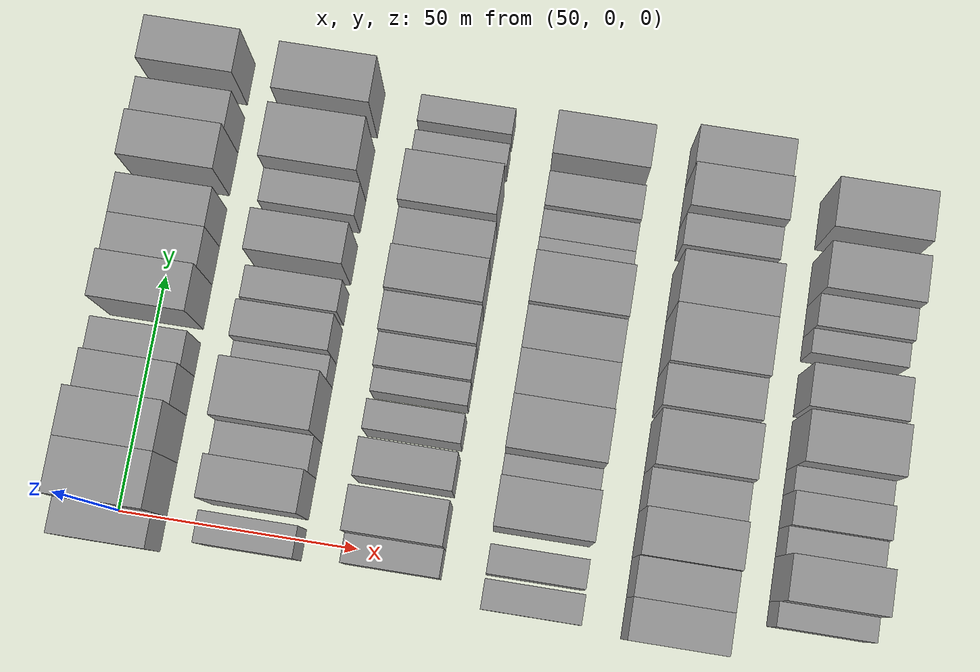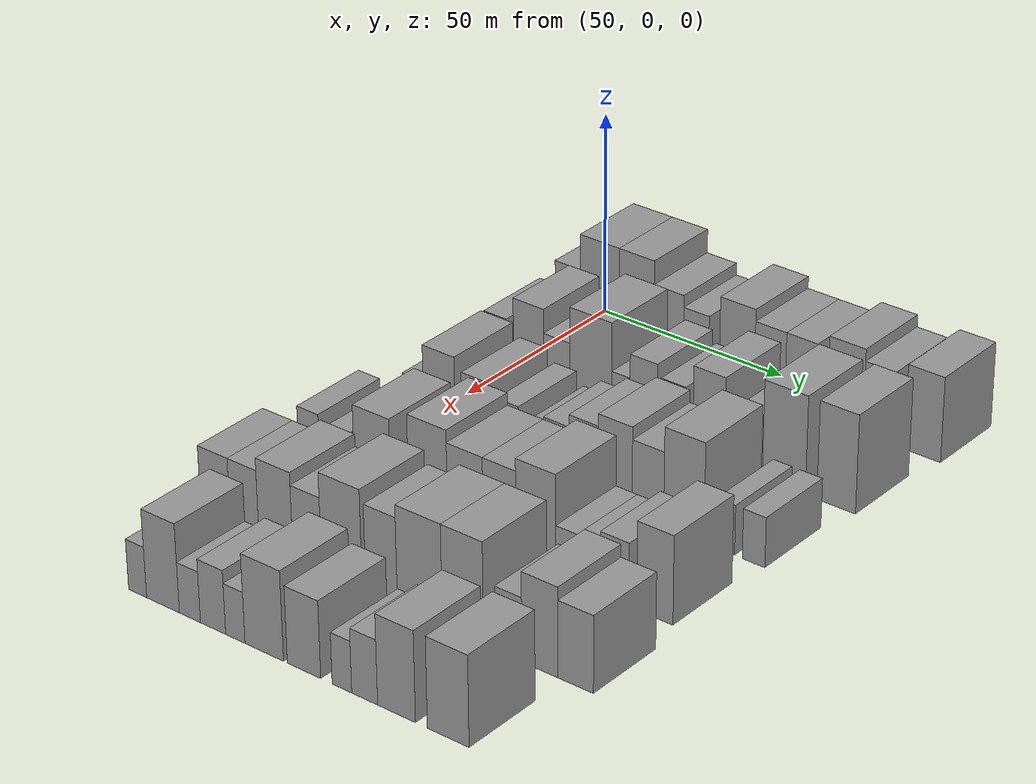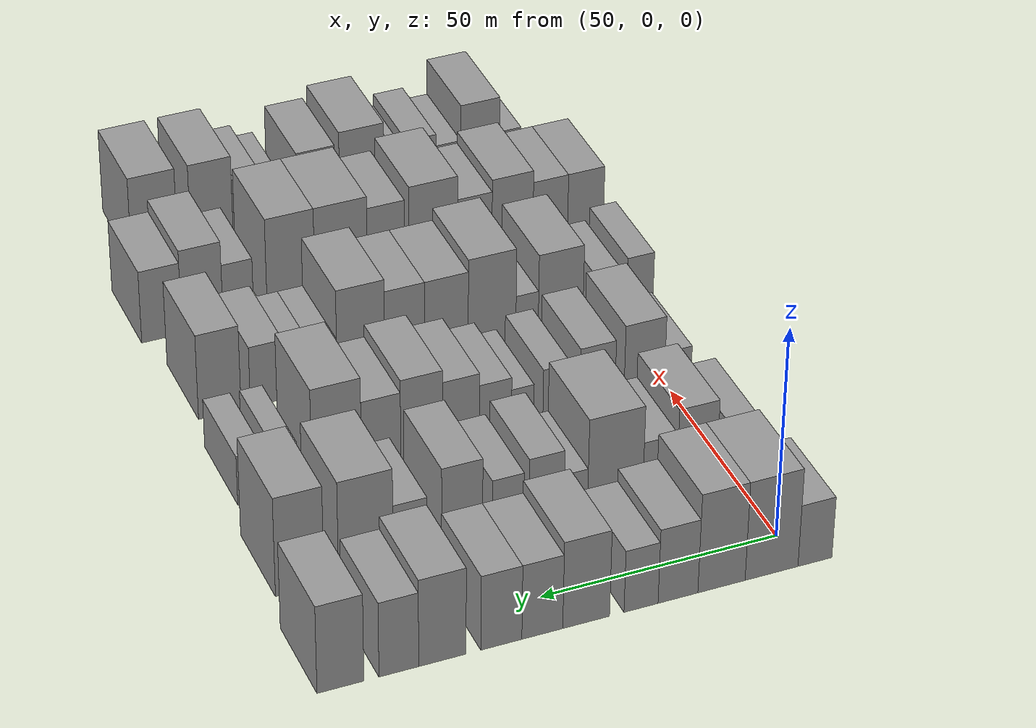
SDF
<sdf version="1.6">
 <world name="default">
  <model name="building_60">
   <static>1</static>
   <pose>50.0000 -3.3186 0 0.000000 0.000000 0.000000</pose>
   <link name="link">
    <pose>0 0 7.50 0 0 0</pose>
    <collision name="collision"><geometry><box><size>20.0000 7.2764 15.0000</size></box></geometry></collision>
    <visual name="visual">
     <cast_shadows>0</cast_shadows>
     <geometry><box><size>20.0000 7.2764 15.0000</size></box></geometry>
     <material>
      <script>
       <uri>model://grey_wall/materials/scripts</uri>
       <uri>model://grey_wall/materials/textures</uri>
       <name>vrc/grey_wall</name>
      </script>
     </material>
    </visual>
   </link>
  </model>
  <model name="building_61">
   <static>1</static>
   <pose>50.0000 5.9535 0 0.000000 0.000000 0.000000</pose>
   <link name="link">
    <pose>0 0 12.00 0 0 0</pose>
    <collision name="collision"><geometry><box><size>20.0000 11.2679 24.0000</size></box></geometry></collision>
    <visual name="visual">
     <cast_shadows>0</cast_shadows>
     <geometry><box><size>20.0000 11.2679 24.0000</size></box></geometry>
     <material>
      <script>
       <uri>model://grey_wall/materials/scripts</uri>
       <uri>model://grey_wall/materials/textures</uri>
       <name>vrc/grey_wall</name>
      </script>
     </material>
    </visual>
   </link>
  </model>
  <model name="building_62">
   <static>1</static>
   <pose>50.0000 16.5843 0 0.000000 0.000000 0.000000</pose>
   <link name="link">
    <pose>0 0 12.00 0 0 0</pose>
    <collision name="collision"><geometry><box><size>20.0000 9.9937 24.0000</size></box></geometry></collision>
    <visual name="visual">
     <cast_shadows>0</cast_shadows>
     <geometry><box><size>20.0000 9.9937 24.0000</size></box></geometry>
     <material>
      <script>
       <uri>model://grey_wall/materials/scripts</uri>
       <uri>model://grey_wall/materials/textures</uri>
       <name>vrc/grey_wall</name>
      </script>
     </material>
    </visual>
   </link>
  </model>
  <model name="building_63">
   <static>1</static>
   <pose>50.0000 25.7559 0 0.000000 0.000000 0.000000</pose>
   <link name="link">
    <pose>0 0 9.00 0 0 0</pose>
    <collision name="collision"><geometry><box><size>20.0000 8.3497 18.0000</size></box></geometry></collision>
    <visual name="visual">
     <cast_shadows>0</cast_shadows>
     <geometry><box><size>20.0000 8.3497 18.0000</size></box></geometry>
     <material>
      <script>
       <uri>model://grey_wall/materials/scripts</uri>
       <uri>model://grey_wall/materials/textures</uri>
       <name>vrc/grey_wall</name>
      </script>
     </material>
    </visual>
   </link>
  </model>
  <model name="building_64">
   <static>1</static>
   <pose>50.0000 33.4857 0 0.000000 0.000000 0.000000</pose>
   <link name="link">
    <pose>0 0 7.50 0 0 0</pose>
    <collision name="collision"><geometry><box><size>20.0000 7.1099 15.0000</size></box></geometry></collision>
    <visual name="visual">
     <cast_shadows>0</cast_shadows>
     <geometry><box><size>20.0000 7.1099 15.0000</size></box></geometry>
     <material>
      <script>
       <uri>model://grey_wall/materials/scripts</uri>
       <uri>model://grey_wall/materials/textures</uri>
       <name>vrc/grey_wall</name>
      </script>
     </material>
    </visual>
   </link>
  </model>
  <model name="building_65">
   <static>1</static>
   <pose>50.0000 44.8790 0 0.000000 0.000000 0.000000</pose>
   <link name="link">
    <pose>0 0 10.50 0 0 0</pose>
    <collision name="collision"><geometry><box><size>20.0000 9.6767 21.0000</size></box></geometry></collision>
    <visual name="visual">
     <cast_shadows>0</cast_shadows>
     <geometry><box><size>20.0000 9.6767 21.0000</size></box></geometry>
     <material>
      <script>
       <uri>model://grey_wall/materials/scripts</uri>
       <uri>model://grey_wall/materials/textures</uri>
       <name>vrc/grey_wall</name>
      </script>
     </material>
    </visual>
   </link>
  </model>
  <model name="building_66">
   <static>1</static>
   <pose>50.0000 53.9146 0 0.000000 0.000000 0.000000</pose>
   <link name="link">
    <pose>0 0 9.00 0 0 0</pose>
    <collision name="collision"><geometry><box><size>20.0000 8.3945 18.0000</size></box></geometry></collision>
    <visual name="visual">
     <cast_shadows>0</cast_shadows>
     <geometry><box><size>20.0000 8.3945 18.0000</size></box></geometry>
     <material>
      <script>
       <uri>model://grey_wall/materials/scripts</uri>
       <uri>model://grey_wall/materials/textures</uri>
       <name>vrc/grey_wall</name>
      </script>
     </material>
    </visual>
   </link>
  </model>
  <model name="building_67">
   <static>1</static>
   <pose>50.0000 62.2940 0 0.000000 0.000000 0.000000</pose>
   <link name="link">
    <pose>0 0 9.00 0 0 0</pose>
    <collision name="collision"><geometry><box><size>20.0000 8.3644 18.0000</size></box></geometry></collision>
    <visual name="visual">
     <cast_shadows>0</cast_shadows>
     <geometry><box><size>20.0000 8.3644 18.0000</size></box></geometry>
     <material>
      <script>
       <uri>model://grey_wall/materials/scripts</uri>
       <uri>model://grey_wall/materials/textures</uri>
       <name>vrc/grey_wall</name>
      </script>
     </material>
    </visual>
   </link>
  </model>
  <model name="building_68">
   <static>1</static>
   <pose>50.0000 74.2563 0 0.000000 0.000000 0.000000</pose>
   <link name="link">
    <pose>0 0 10.50 0 0 0</pose>
    <collision name="collision"><geometry><box><size>20.0000 9.5601 21.0000</size></box></geometry></collision>
    <visual name="visual">
     <cast_shadows>0</cast_shadows>
     <geometry><box><size>20.0000 9.5601 21.0000</size></box></geometry>
     <material>
      <script>
       <uri>model://grey_wall/materials/scripts</uri>
       <uri>model://grey_wall/materials/textures</uri>
       <name>vrc/grey_wall</name>
      </script>
     </material>
    </visual>
   </link>
  </model>
  <model name="building_69">
   <static>1</static>
   <pose>50.0000 83.0197 0 0.000000 0.000000 0.000000</pose>
   <link name="link">
    <pose>0 0 9.00 0 0 0</pose>
    <collision name="collision"><geometry><box><size>20.0000 7.9668 18.0000</size></box></geometry></collision>
    <visual name="visual">
     <cast_shadows>0</cast_shadows>
     <geometry><box><size>20.0000 7.9668 18.0000</size></box></geometry>
     <material>
      <script>
       <uri>model://grey_wall/materials/scripts</uri>
       <uri>model://grey_wall/materials/textures</uri>
       <name>vrc/grey_wall</name>
      </script>
     </material>
    </visual>
   </link>
  </model>
  <model name="building_70">
   <static>1</static>
   <pose>50.0000 94.6679 0 0.000000 0.000000 0.000000</pose>
   <link name="link">
    <pose>0 0 10.50 0 0 0</pose>
    <collision name="collision"><geometry><box><size>20.0000 9.3296 21.0000</size></box></geometry></collision>
    <visual name="visual">
     <cast_shadows>0</cast_shadows>
     <geometry><box><size>20.0000 9.3296 21.0000</size></box></geometry>
     <material>
      <script>
       <uri>model://grey_wall/materials/scripts</uri>
       <uri>model://grey_wall/materials/textures</uri>
       <name>vrc/grey_wall</name>
      </script>
     </material>
    </visual>
   </link>
  </model>
  <model name="building_167">
   <static>1</static>
   <pose>79.0000 -0.9709 0 0.000000 0.000000 0.000000</pose>
   <link name="link">
    <pose>0 0 7.50 0 0 0</pose>
    <collision name="collision"><geometry><box><size>20.0000 6.4832 15.0000</size></box></geometry></collision>
    <visual name="visual">
     <cast_shadows>0</cast_shadows>
     <geometry><box><size>20.0000 6.4832 15.0000</size></box></geometry>
     <material>
      <script>
       <uri>model://grey_wall/materials/scripts</uri>
       <uri>model://grey_wall/materials/textures</uri>
       <name>vrc/grey_wall</name>
      </script>
     </material>
    </visual>
   </link>
  </model>
  <model name="building_168">
   <static>1</static>
   <pose>79.0000 8.6030 0 0.000000 0.000000 0.000000</pose>
   <link name="link">
    <pose>0 0 10.50 0 0 0</pose>
    <collision name="collision"><geometry><box><size>20.0000 8.6647 21.0000</size></box></geometry></collision>
    <visual name="visual">
     <cast_shadows>0</cast_shadows>
     <geometry><box><size>20.0000 8.6647 21.0000</size></box></geometry>
     <material>
      <script>
       <uri>model://grey_wall/materials/scripts</uri>
       <uri>model://grey_wall/materials/textures</uri>
       <name>vrc/grey_wall</name>
      </script>
     </material>
    </visual>
   </link>
  </model>
  <model name="building_169">
   <static>1</static>
   <pose>79.0000 16.6004 0 0.000000 0.000000 0.000000</pose>
   <link name="link">
    <pose>0 0 7.50 0 0 0</pose>
    <collision name="collision"><geometry><box><size>20.0000 7.3301 15.0000</size></box></geometry></collision>
    <visual name="visual">
     <cast_shadows>0</cast_shadows>
     <geometry><box><size>20.0000 7.3301 15.0000</size></box></geometry>
     <material>
      <script>
       <uri>model://grey_wall/materials/scripts</uri>
       <uri>model://grey_wall/materials/textures</uri>
       <name>vrc/grey_wall</name>
      </script>
     </material>
    </visual>
   </link>
  </model>
  <model name="building_170">
   <static>1</static>
   <pose>79.0000 26.1808 0 0.000000 0.000000 0.000000</pose>
   <link name="link">
    <pose>0 0 12.00 0 0 0</pose>
    <collision name="collision"><geometry><box><size>20.0000 11.8307 24.0000</size></box></geometry></collision>
    <visual name="visual">
     <cast_shadows>0</cast_shadows>
     <geometry><box><size>20.0000 11.8307 24.0000</size></box></geometry>
     <material>
      <script>
       <uri>model://grey_wall/materials/scripts</uri>
       <uri>model://grey_wall/materials/textures</uri>
       <name>vrc/grey_wall</name>
      </script>
     </material>
    </visual>
   </link>
  </model>
  <model name="building_171">
   <static>1</static>
   <pose>79.0000 34.6026 0 0.000000 0.000000 0.000000</pose>
   <link name="link">
    <pose>0 0 6.00 0 0 0</pose>
    <collision name="collision"><geometry><box><size>20.0000 5.0128 12.0000</size></box></geometry></collision>
    <visual name="visual">
     <cast_shadows>0</cast_shadows>
     <geometry><box><size>20.0000 5.0128 12.0000</size></box></geometry>
     <material>
      <script>
       <uri>model://grey_wall/materials/scripts</uri>
       <uri>model://grey_wall/materials/textures</uri>
       <name>vrc/grey_wall</name>
      </script>
     </material>
    </visual>
   </link>
  </model>
  <model name="building_172">
   <static>1</static>
   <pose>79.0000 40.8529 0 0.000000 0.000000 0.000000</pose>
   <link name="link">
    <pose>0 0 9.00 0 0 0</pose>
    <collision name="collision"><geometry><box><size>20.0000 7.4879 18.0000</size></box></geometry></collision>
    <visual name="visual">
     <cast_shadows>0</cast_shadows>
     <geometry><box><size>20.0000 7.4879 18.0000</size></box></geometry>
     <material>
      <script>
       <uri>model://grey_wall/materials/scripts</uri>
       <uri>model://grey_wall/materials/textures</uri>
       <name>vrc/grey_wall</name>
      </script>
     </material>
    </visual>
   </link>
  </model>
  <model name="building_173">
   <static>1</static>
   <pose>79.0000 48.9459 0 0.000000 0.000000 0.000000</pose>
   <link name="link">
    <pose>0 0 7.50 0 0 0</pose>
    <collision name="collision"><geometry><box><size>20.0000 6.6981 15.0000</size></box></geometry></collision>
    <visual name="visual">
     <cast_shadows>0</cast_shadows>
     <geometry><box><size>20.0000 6.6981 15.0000</size></box></geometry>
     <material>
      <script>
       <uri>model://grey_wall/materials/scripts</uri>
       <uri>model://grey_wall/materials/textures</uri>
       <name>vrc/grey_wall</name>
      </script>
     </material>
    </visual>
   </link>
  </model>
  <model name="building_174">
   <static>1</static>
   <pose>79.0000 58.5624 0 0.000000 0.000000 0.000000</pose>
   <link name="link">
    <pose>0 0 10.50 0 0 0</pose>
    <collision name="collision"><geometry><box><size>20.0000 8.5348 21.0000</size></box></geometry></collision>
    <visual name="visual">
     <cast_shadows>0</cast_shadows>
     <geometry><box><size>20.0000 8.5348 21.0000</size></box></geometry>
     <material>
      <script>
       <uri>model://grey_wall/materials/scripts</uri>
       <uri>model://grey_wall/materials/textures</uri>
       <name>vrc/grey_wall</name>
      </script>
     </material>
    </visual>
   </link>
  </model>
  <model name="building_175">
   <static>1</static>
   <pose>79.0000 69.3627 0 0.000000 0.000000 0.000000</pose>
   <link name="link">
    <pose>0 0 7.50 0 0 0</pose>
    <collision name="collision"><geometry><box><size>20.0000 7.0658 15.0000</size></box></geometry></collision>
    <visual name="visual">
     <cast_shadows>0</cast_shadows>
     <geometry><box><size>20.0000 7.0658 15.0000</size></box></geometry>
     <material>
      <script>
       <uri>model://grey_wall/materials/scripts</uri>
       <uri>model://grey_wall/materials/textures</uri>
       <name>vrc/grey_wall</name>
      </script>
     </material>
    </visual>
   </link>
  </model>
  <model name="building_176">
   <static>1</static>
   <pose>79.0000 78.5263 0 0.000000 0.000000 0.000000</pose>
   <link name="link">
    <pose>0 0 12.00 0 0 0</pose>
    <collision name="collision"><geometry><box><size>20.0000 11.2614 24.0000</size></box></geometry></collision>
    <visual name="visual">
     <cast_shadows>0</cast_shadows>
     <geometry><box><size>20.0000 11.2614 24.0000</size></box></geometry>
     <material>
      <script>
       <uri>model://grey_wall/materials/scripts</uri>
       <uri>model://grey_wall/materials/textures</uri>
       <name>vrc/grey_wall</name>
      </script>
     </material>
    </visual>
   </link>
  </model>
  <model name="building_177">
   <static>1</static>
   <pose>79.0000 92.1079 0 0.000000 0.000000 0.000000</pose>
   <link name="link">
    <pose>0 0 12.00 0 0 0</pose>
    <collision name="collision"><geometry><box><size>20.0000 9.9020 24.0000</size></box></geometry></collision>
    <visual name="visual">
     <cast_shadows>0</cast_shadows>
     <geometry><box><size>20.0000 9.9020 24.0000</size></box></geometry>
     <material>
      <script>
       <uri>model://grey_wall/materials/scripts</uri>
       <uri>model://grey_wall/materials/textures</uri>
       <name>vrc/grey_wall</name>
      </script>
     </material>
    </visual>
   </link>
  </model>
  <model name="building_285">
   <static>1</static>
   <pose>108.0000 -0.4358 0 0.000000 0.000000 0.000000</pose>
   <link name="link">
    <pose>0 0 6.00 0 0 0</pose>
    <collision name="collision"><geometry><box><size>20.0000 5.9710 12.0000</size></box></geometry></collision>
    <visual name="visual">
     <cast_shadows>0</cast_shadows>
     <geometry><box><size>20.0000 5.9710 12.0000</size></box></geometry>
     <material>
      <script>
       <uri>model://grey_wall/materials/scripts</uri>
       <uri>model://grey_wall/materials/textures</uri>
       <name>vrc/grey_wall</name>
      </script>
     </material>
    </visual>
   </link>
  </model>
  <model name="building_286">
   <static>1</static>
   <pose>108.0000 7.0276 0 0.000000 0.000000 0.000000</pose>
   <link name="link">
    <pose>0 0 10.50 0 0 0</pose>
    <collision name="collision"><geometry><box><size>20.0000 8.9559 21.0000</size></box></geometry></collision>
    <visual name="visual">
     <cast_shadows>0</cast_shadows>
     <geometry><box><size>20.0000 8.9559 21.0000</size></box></geometry>
     <material>
      <script>
       <uri>model://grey_wall/materials/scripts</uri>
       <uri>model://grey_wall/materials/textures</uri>
       <name>vrc/grey_wall</name>
      </script>
     </material>
    </visual>
   </link>
  </model>
  <model name="building_287">
   <static>1</static>
   <pose>108.0000 17.3873 0 0.000000 0.000000 0.000000</pose>
   <link name="link">
    <pose>0 0 9.00 0 0 0</pose>
    <collision name="collision"><geometry><box><size>20.0000 7.7633 18.0000</size></box></geometry></collision>
    <visual name="visual">
     <cast_shadows>0</cast_shadows>
     <geometry><box><size>20.0000 7.7633 18.0000</size></box></geometry>
     <material>
      <script>
       <uri>model://grey_wall/materials/scripts</uri>
       <uri>model://grey_wall/materials/textures</uri>
       <name>vrc/grey_wall</name>
      </script>
     </material>
    </visual>
   </link>
  </model>
  <model name="building_288">
   <static>1</static>
   <pose>108.0000 26.2926 0 0.000000 0.000000 0.000000</pose>
   <link name="link">
    <pose>0 0 7.50 0 0 0</pose>
    <collision name="collision"><geometry><box><size>20.0000 6.0474 15.0000</size></box></geometry></collision>
    <visual name="visual">
     <cast_shadows>0</cast_shadows>
     <geometry><box><size>20.0000 6.0474 15.0000</size></box></geometry>
     <material>
      <script>
       <uri>model://grey_wall/materials/scripts</uri>
       <uri>model://grey_wall/materials/textures</uri>
       <name>vrc/grey_wall</name>
      </script>
     </material>
    </visual>
   </link>
  </model>
  <model name="building_289">
   <static>1</static>
   <pose>108.0000 33.7464 0 0.000000 0.000000 0.000000</pose>
   <link name="link">
    <pose>0 0 6.00 0 0 0</pose>
    <collision name="collision"><geometry><box><size>20.0000 4.8602 12.0000</size></box></geometry></collision>
    <visual name="visual">
     <cast_shadows>0</cast_shadows>
     <geometry><box><size>20.0000 4.8602 12.0000</size></box></geometry>
     <material>
      <script>
       <uri>model://grey_wall/materials/scripts</uri>
       <uri>model://grey_wall/materials/textures</uri>
       <name>vrc/grey_wall</name>
      </script>
     </material>
    </visual>
   </link>
  </model>
  <model name="building_290">
   <static>1</static>
   <pose>108.0000 39.6353 0 0.000000 0.000000 0.000000</pose>
   <link name="link">
    <pose>0 0 7.50 0 0 0</pose>
    <collision name="collision"><geometry><box><size>20.0000 6.9175 15.0000</size></box></geometry></collision>
    <visual name="visual">
     <cast_shadows>0</cast_shadows>
     <geometry><box><size>20.0000 6.9175 15.0000</size></box></geometry>
     <material>
      <script>
       <uri>model://grey_wall/materials/scripts</uri>
       <uri>model://grey_wall/materials/textures</uri>
       <name>vrc/grey_wall</name>
      </script>
     </material>
    </visual>
   </link>
  </model>
  <model name="building_291">
   <static>1</static>
   <pose>108.0000 47.0670 0 0.000000 0.000000 0.000000</pose>
   <link name="link">
    <pose>0 0 9.00 0 0 0</pose>
    <collision name="collision"><geometry><box><size>20.0000 7.9460 18.0000</size></box></geometry></collision>
    <visual name="visual">
     <cast_shadows>0</cast_shadows>
     <geometry><box><size>20.0000 7.9460 18.0000</size></box></geometry>
     <material>
      <script>
       <uri>model://grey_wall/materials/scripts</uri>
       <uri>model://grey_wall/materials/textures</uri>
       <name>vrc/grey_wall</name>
      </script>
     </material>
    </visual>
   </link>
  </model>
  <model name="building_292">
   <static>1</static>
   <pose>108.0000 55.5346 0 0.000000 0.000000 0.000000</pose>
   <link name="link">
    <pose>0 0 10.50 0 0 0</pose>
    <collision name="collision"><geometry><box><size>20.0000 8.9892 21.0000</size></box></geometry></collision>
    <visual name="visual">
     <cast_shadows>0</cast_shadows>
     <geometry><box><size>20.0000 8.9892 21.0000</size></box></geometry>
     <material>
      <script>
       <uri>model://grey_wall/materials/scripts</uri>
       <uri>model://grey_wall/materials/textures</uri>
       <name>vrc/grey_wall</name>
      </script>
     </material>
    </visual>
   </link>
  </model>
  <model name="building_293">
   <static>1</static>
   <pose>108.0000 64.2094 0 0.000000 0.000000 0.000000</pose>
   <link name="link">
    <pose>0 0 9.00 0 0 0</pose>
    <collision name="collision"><geometry><box><size>20.0000 8.3604 18.0000</size></box></geometry></collision>
    <visual name="visual">
     <cast_shadows>0</cast_shadows>
     <geometry><box><size>20.0000 8.3604 18.0000</size></box></geometry>
     <material>
      <script>
       <uri>model://grey_wall/materials/scripts</uri>
       <uri>model://grey_wall/materials/textures</uri>
       <name>vrc/grey_wall</name>
      </script>
     </material>
    </visual>
   </link>
  </model>
  <model name="building_294">
   <static>1</static>
   <pose>108.0000 73.6441 0 0.000000 0.000000 0.000000</pose>
   <link name="link">
    <pose>0 0 12.00 0 0 0</pose>
    <collision name="collision"><geometry><box><size>20.0000 10.5091 24.0000</size></box></geometry></collision>
    <visual name="visual">
     <cast_shadows>0</cast_shadows>
     <geometry><box><size>20.0000 10.5091 24.0000</size></box></geometry>
     <material>
      <script>
       <uri>model://grey_wall/materials/scripts</uri>
       <uri>model://grey_wall/materials/textures</uri>
       <name>vrc/grey_wall</name>
      </script>
     </material>
    </visual>
   </link>
  </model>
  <model name="building_295">
   <static>1</static>
   <pose>108.0000 84.3169 0 0.000000 0.000000 0.000000</pose>
   <link name="link">
    <pose>0 0 6.00 0 0 0</pose>
    <collision name="collision"><geometry><box><size>20.0000 4.8365 12.0000</size></box></geometry></collision>
    <visual name="visual">
     <cast_shadows>0</cast_shadows>
     <geometry><box><size>20.0000 4.8365 12.0000</size></box></geometry>
     <material>
      <script>
       <uri>model://grey_wall/materials/scripts</uri>
       <uri>model://grey_wall/materials/textures</uri>
       <name>vrc/grey_wall</name>
      </script>
     </material>
    </visual>
   </link>
  </model>
  <model name="building_296">
   <static>1</static>
   <pose>108.0000 91.6062 0 0.000000 0.000000 0.000000</pose>
   <link name="link">
    <pose>0 0 6.00 0 0 0</pose>
    <collision name="collision"><geometry><box><size>20.0000 5.7421 12.0000</size></box></geometry></collision>
    <visual name="visual">
     <cast_shadows>0</cast_shadows>
     <geometry><box><size>20.0000 5.7421 12.0000</size></box></geometry>
     <material>
      <script>
       <uri>model://grey_wall/materials/scripts</uri>
       <uri>model://grey_wall/materials/textures</uri>
       <name>vrc/grey_wall</name>
      </script>
     </material>
    </visual>
   </link>
  </model>
  <model name="building_397">
   <static>1</static>
   <pose>137.0000 -4.9931 0 0.000000 0.000000 0.000000</pose>
   <link name="link">
    <pose>0 0 7.50 0 0 0</pose>
    <collision name="collision"><geometry><box><size>20.0000 6.0318 15.0000</size></box></geometry></collision>
    <visual name="visual">
     <cast_shadows>0</cast_shadows>
     <geometry><box><size>20.0000 6.0318 15.0000</size></box></geometry>
     <material>
      <script>
       <uri>model://grey_wall/materials/scripts</uri>
       <uri>model://grey_wall/materials/textures</uri>
       <name>vrc/grey_wall</name>
      </script>
     </material>
    </visual>
   </link>
  </model>
  <model name="building_398">
   <static>1</static>
   <pose>137.0000 2.0042 0 0.000000 0.000000 0.000000</pose>
   <link name="link">
    <pose>0 0 6.00 0 0 0</pose>
    <collision name="collision"><geometry><box><size>20.0000 5.9630 12.0000</size></box></geometry></collision>
    <visual name="visual">
     <cast_shadows>0</cast_shadows>
     <geometry><box><size>20.0000 5.9630 12.0000</size></box></geometry>
     <material>
      <script>
       <uri>model://grey_wall/materials/scripts</uri>
       <uri>model://grey_wall/materials/textures</uri>
       <name>vrc/grey_wall</name>
      </script>
     </material>
    </visual>
   </link>
  </model>
  <model name="building_399">
   <static>1</static>
   <pose>137.0000 13.0378 0 0.000000 0.000000 0.000000</pose>
   <link name="link">
    <pose>0 0 10.50 0 0 0</pose>
    <collision name="collision"><geometry><box><size>20.0000 10.1042 21.0000</size></box></geometry></collision>
    <visual name="visual">
     <cast_shadows>0</cast_shadows>
     <geometry><box><size>20.0000 10.1042 21.0000</size></box></geometry>
     <material>
      <script>
       <uri>model://grey_wall/materials/scripts</uri>
       <uri>model://grey_wall/materials/textures</uri>
       <name>vrc/grey_wall</name>
      </script>
     </material>
    </visual>
   </link>
  </model>
  <model name="building_400">
   <static>1</static>
   <pose>137.0000 20.6125 0 0.000000 0.000000 0.000000</pose>
   <link name="link">
    <pose>0 0 6.00 0 0 0</pose>
    <collision name="collision"><geometry><box><size>20.0000 5.0451 12.0000</size></box></geometry></collision>
    <visual name="visual">
     <cast_shadows>0</cast_shadows>
     <geometry><box><size>20.0000 5.0451 12.0000</size></box></geometry>
     <material>
      <script>
       <uri>model://grey_wall/materials/scripts</uri>
       <uri>model://grey_wall/materials/textures</uri>
       <name>vrc/grey_wall</name>
      </script>
     </material>
    </visual>
   </link>
  </model>
  <model name="building_401">
   <static>1</static>
   <pose>137.0000 28.4597 0 0.000000 0.000000 0.000000</pose>
   <link name="link">
    <pose>0 0 12.00 0 0 0</pose>
    <collision name="collision"><geometry><box><size>20.0000 10.6492 24.0000</size></box></geometry></collision>
    <visual name="visual">
     <cast_shadows>0</cast_shadows>
     <geometry><box><size>20.0000 10.6492 24.0000</size></box></geometry>
     <material>
      <script>
       <uri>model://grey_wall/materials/scripts</uri>
       <uri>model://grey_wall/materials/textures</uri>
       <name>vrc/grey_wall</name>
      </script>
     </material>
    </visual>
   </link>
  </model>
  <model name="building_402">
   <static>1</static>
   <pose>137.0000 38.6065 0 0.000000 0.000000 0.000000</pose>
   <link name="link">
    <pose>0 0 10.50 0 0 0</pose>
    <collision name="collision"><geometry><box><size>20.0000 9.6444 21.0000</size></box></geometry></collision>
    <visual name="visual">
     <cast_shadows>0</cast_shadows>
     <geometry><box><size>20.0000 9.6444 21.0000</size></box></geometry>
     <material>
      <script>
       <uri>model://grey_wall/materials/scripts</uri>
       <uri>model://grey_wall/materials/textures</uri>
       <name>vrc/grey_wall</name>
      </script>
     </material>
    </visual>
   </link>
  </model>
  <model name="building_403">
   <static>1</static>
   <pose>137.0000 47.8235 0 0.000000 0.000000 0.000000</pose>
   <link name="link">
    <pose>0 0 10.50 0 0 0</pose>
    <collision name="collision"><geometry><box><size>20.0000 8.7895 21.0000</size></box></geometry></collision>
    <visual name="visual">
     <cast_shadows>0</cast_shadows>
     <geometry><box><size>20.0000 8.7895 21.0000</size></box></geometry>
     <material>
      <script>
       <uri>model://grey_wall/materials/scripts</uri>
       <uri>model://grey_wall/materials/textures</uri>
       <name>vrc/grey_wall</name>
      </script>
     </material>
    </visual>
   </link>
  </model>
  <model name="building_404">
   <static>1</static>
   <pose>137.0000 57.4490 0 0.000000 0.000000 0.000000</pose>
   <link name="link">
    <pose>0 0 12.00 0 0 0</pose>
    <collision name="collision"><geometry><box><size>20.0000 10.4616 24.0000</size></box></geometry></collision>
    <visual name="visual">
     <cast_shadows>0</cast_shadows>
     <geometry><box><size>20.0000 10.4616 24.0000</size></box></geometry>
     <material>
      <script>
       <uri>model://grey_wall/materials/scripts</uri>
       <uri>model://grey_wall/materials/textures</uri>
       <name>vrc/grey_wall</name>
      </script>
     </material>
    </visual>
   </link>
  </model>
  <model name="building_405">
   <static>1</static>
   <pose>137.0000 65.4536 0 0.000000 0.000000 0.000000</pose>
   <link name="link">
    <pose>0 0 6.00 0 0 0</pose>
    <collision name="collision"><geometry><box><size>20.0000 5.5475 12.0000</size></box></geometry></collision>
    <visual name="visual">
     <cast_shadows>0</cast_shadows>
     <geometry><box><size>20.0000 5.5475 12.0000</size></box></geometry>
     <material>
      <script>
       <uri>model://grey_wall/materials/scripts</uri>
       <uri>model://grey_wall/materials/textures</uri>
       <name>vrc/grey_wall</name>
      </script>
     </material>
    </visual>
   </link>
  </model>
  <model name="building_406">
   <static>1</static>
   <pose>137.0000 71.2246 0 0.000000 0.000000 0.000000</pose>
   <link name="link">
    <pose>0 0 6.00 0 0 0</pose>
    <collision name="collision"><geometry><box><size>20.0000 5.9944 12.0000</size></box></geometry></collision>
    <visual name="visual">
     <cast_shadows>0</cast_shadows>
     <geometry><box><size>20.0000 5.9944 12.0000</size></box></geometry>
     <material>
      <script>
       <uri>model://grey_wall/materials/scripts</uri>
       <uri>model://grey_wall/materials/textures</uri>
       <name>vrc/grey_wall</name>
      </script>
     </material>
    </visual>
   </link>
  </model>
  <model name="building_407">
   <static>1</static>
   <pose>137.0000 77.8892 0 0.000000 0.000000 0.000000</pose>
   <link name="link">
    <pose>0 0 7.50 0 0 0</pose>
    <collision name="collision"><geometry><box><size>20.0000 7.3349 15.0000</size></box></geometry></collision>
    <visual name="visual">
     <cast_shadows>0</cast_shadows>
     <geometry><box><size>20.0000 7.3349 15.0000</size></box></geometry>
     <material>
      <script>
       <uri>model://grey_wall/materials/scripts</uri>
       <uri>model://grey_wall/materials/textures</uri>
       <name>vrc/grey_wall</name>
      </script>
     </material>
    </visual>
   </link>
  </model>
  <model name="building_408">
   <static>1</static>
   <pose>137.0000 88.1213 0 0.000000 0.000000 0.000000</pose>
   <link name="link">
    <pose>0 0 10.50 0 0 0</pose>
    <collision name="collision"><geometry><box><size>20.0000 9.1293 21.0000</size></box></geometry></collision>
    <visual name="visual">
     <cast_shadows>0</cast_shadows>
     <geometry><box><size>20.0000 9.1293 21.0000</size></box></geometry>
     <material>
      <script>
       <uri>model://grey_wall/materials/scripts</uri>
       <uri>model://grey_wall/materials/textures</uri>
       <name>vrc/grey_wall</name>
      </script>
     </material>
    </visual>
   </link>
  </model>
  <model name="building_510">
   <static>1</static>
   <pose>166.0000 -5.1449 0 0.000000 0.000000 0.000000</pose>
   <link name="link">
    <pose>0 0 9.00 0 0 0</pose>
    <collision name="collision"><geometry><box><size>20.0000 8.3980 18.0000</size></box></geometry></collision>
    <visual name="visual">
     <cast_shadows>0</cast_shadows>
     <geometry><box><size>20.0000 8.3980 18.0000</size></box></geometry>
     <material>
      <script>
       <uri>model://grey_wall/materials/scripts</uri>
       <uri>model://grey_wall/materials/textures</uri>
       <name>vrc/grey_wall</name>
      </script>
     </material>
    </visual>
   </link>
  </model>
  <model name="building_511">
   <static>1</static>
   <pose>166.0000 3.0875 0 0.000000 0.000000 0.000000</pose>
   <link name="link">
    <pose>0 0 9.00 0 0 0</pose>
    <collision name="collision"><geometry><box><size>20.0000 8.0669 18.0000</size></box></geometry></collision>
    <visual name="visual">
     <cast_shadows>0</cast_shadows>
     <geometry><box><size>20.0000 8.0669 18.0000</size></box></geometry>
     <material>
      <script>
       <uri>model://grey_wall/materials/scripts</uri>
       <uri>model://grey_wall/materials/textures</uri>
       <name>vrc/grey_wall</name>
      </script>
     </material>
    </visual>
   </link>
  </model>
  <model name="building_512">
   <static>1</static>
   <pose>166.0000 11.8502 0 0.000000 0.000000 0.000000</pose>
   <link name="link">
    <pose>0 0 10.50 0 0 0</pose>
    <collision name="collision"><geometry><box><size>20.0000 9.4586 21.0000</size></box></geometry></collision>
    <visual name="visual">
     <cast_shadows>0</cast_shadows>
     <geometry><box><size>20.0000 9.4586 21.0000</size></box></geometry>
     <material>
      <script>
       <uri>model://grey_wall/materials/scripts</uri>
       <uri>model://grey_wall/materials/textures</uri>
       <name>vrc/grey_wall</name>
      </script>
     </material>
    </visual>
   </link>
  </model>
  <model name="building_513">
   <static>1</static>
   <pose>166.0000 20.5361 0 0.000000 0.000000 0.000000</pose>
   <link name="link">
    <pose>0 0 9.00 0 0 0</pose>
    <collision name="collision"><geometry><box><size>20.0000 7.9132 18.0000</size></box></geometry></collision>
    <visual name="visual">
     <cast_shadows>0</cast_shadows>
     <geometry><box><size>20.0000 7.9132 18.0000</size></box></geometry>
     <material>
      <script>
       <uri>model://grey_wall/materials/scripts</uri>
       <uri>model://grey_wall/materials/textures</uri>
       <name>vrc/grey_wall</name>
      </script>
     </material>
    </visual>
   </link>
  </model>
  <model name="building_514">
   <static>1</static>
   <pose>166.0000 29.9983 0 0.000000 0.000000 0.000000</pose>
   <link name="link">
    <pose>0 0 12.00 0 0 0</pose>
    <collision name="collision"><geometry><box><size>20.0000 11.0111 24.0000</size></box></geometry></collision>
    <visual name="visual">
     <cast_shadows>0</cast_shadows>
     <geometry><box><size>20.0000 11.0111 24.0000</size></box></geometry>
     <material>
      <script>
       <uri>model://grey_wall/materials/scripts</uri>
       <uri>model://grey_wall/materials/textures</uri>
       <name>vrc/grey_wall</name>
      </script>
     </material>
    </visual>
   </link>
  </model>
  <model name="building_515">
   <static>1</static>
   <pose>166.0000 40.7231 0 0.000000 0.000000 0.000000</pose>
   <link name="link">
    <pose>0 0 10.50 0 0 0</pose>
    <collision name="collision"><geometry><box><size>20.0000 8.4384 21.0000</size></box></geometry></collision>
    <visual name="visual">
     <cast_shadows>0</cast_shadows>
     <geometry><box><size>20.0000 8.4384 21.0000</size></box></geometry>
     <material>
      <script>
       <uri>model://grey_wall/materials/scripts</uri>
       <uri>model://grey_wall/materials/textures</uri>
       <name>vrc/grey_wall</name>
      </script>
     </material>
    </visual>
   </link>
  </model>
  <model name="building_516">
   <static>1</static>
   <pose>166.0000 50.8614 0 0.000000 0.000000 0.000000</pose>
   <link name="link">
    <pose>0 0 12.00 0 0 0</pose>
    <collision name="collision"><geometry><box><size>20.0000 11.8383 24.0000</size></box></geometry></collision>
    <visual name="visual">
     <cast_shadows>0</cast_shadows>
     <geometry><box><size>20.0000 11.8383 24.0000</size></box></geometry>
     <material>
      <script>
       <uri>model://grey_wall/materials/scripts</uri>
       <uri>model://grey_wall/materials/textures</uri>
       <name>vrc/grey_wall</name>
      </script>
     </material>
    </visual>
   </link>
  </model>
  <model name="building_517">
   <static>1</static>
   <pose>166.0000 62.1393 0 0.000000 0.000000 0.000000</pose>
   <link name="link">
    <pose>0 0 12.00 0 0 0</pose>
    <collision name="collision"><geometry><box><size>20.0000 10.7174 24.0000</size></box></geometry></collision>
    <visual name="visual">
     <cast_shadows>0</cast_shadows>
     <geometry><box><size>20.0000 10.7174 24.0000</size></box></geometry>
     <material>
      <script>
       <uri>model://grey_wall/materials/scripts</uri>
       <uri>model://grey_wall/materials/textures</uri>
       <name>vrc/grey_wall</name>
      </script>
     </material>
    </visual>
   </link>
  </model>
  <model name="building_518">
   <static>1</static>
   <pose>166.0000 73.8905 0 0.000000 0.000000 0.000000</pose>
   <link name="link">
    <pose>0 0 7.50 0 0 0</pose>
    <collision name="collision"><geometry><box><size>20.0000 6.7850 15.0000</size></box></geometry></collision>
    <visual name="visual">
     <cast_shadows>0</cast_shadows>
     <geometry><box><size>20.0000 6.7850 15.0000</size></box></geometry>
     <material>
      <script>
       <uri>model://grey_wall/materials/scripts</uri>
       <uri>model://grey_wall/materials/textures</uri>
       <name>vrc/grey_wall</name>
      </script>
     </material>
    </visual>
   </link>
  </model>
  <model name="building_519">
   <static>1</static>
   <pose>166.0000 81.8405 0 0.000000 0.000000 0.000000</pose>
   <link name="link">
    <pose>0 0 10.50 0 0 0</pose>
    <collision name="collision"><geometry><box><size>20.0000 9.1150 21.0000</size></box></geometry></collision>
    <visual name="visual">
     <cast_shadows>0</cast_shadows>
     <geometry><box><size>20.0000 9.1150 21.0000</size></box></geometry>
     <material>
      <script>
       <uri>model://grey_wall/materials/scripts</uri>
       <uri>model://grey_wall/materials/textures</uri>
       <name>vrc/grey_wall</name>
      </script>
     </material>
    </visual>
   </link>
  </model>
  <model name="building_520">
   <static>1</static>
   <pose>166.0000 90.8011 0 0.000000 0.000000 0.000000</pose>
   <link name="link">
    <pose>0 0 9.00 0 0 0</pose>
    <collision name="collision"><geometry><box><size>20.0000 8.8064 18.0000</size></box></geometry></collision>
    <visual name="visual">
     <cast_shadows>0</cast_shadows>
     <geometry><box><size>20.0000 8.8064 18.0000</size></box></geometry>
     <material>
      <script>
       <uri>model://grey_wall/materials/scripts</uri>
       <uri>model://grey_wall/materials/textures</uri>
       <name>vrc/grey_wall</name>
      </script>
     </material>
    </visual>
   </link>
  </model>
  <model name="building_624">
   <static>1</static>
   <pose>195.0000 0.3408 0 0.000000 0.000000 0.000000</pose>
   <link name="link">
    <pose>0 0 6.00 0 0 0</pose>
    <collision name="collision"><geometry><box><size>20.0000 5.0565 12.0000</size></box></geometry></collision>
    <visual name="visual">
     <cast_shadows>0</cast_shadows>
     <geometry><box><size>20.0000 5.0565 12.0000</size></box></geometry>
     <material>
      <script>
       <uri>model://grey_wall/materials/scripts</uri>
       <uri>model://grey_wall/materials/textures</uri>
       <name>vrc/grey_wall</name>
      </script>
     </material>
    </visual>
   </link>
  </model>
  <model name="building_625">
   <static>1</static>
   <pose>195.0000 7.4513 0 0.000000 0.000000 0.000000</pose>
   <link name="link">
    <pose>0 0 10.50 0 0 0</pose>
    <collision name="collision"><geometry><box><size>20.0000 9.1646 21.0000</size></box></geometry></collision>
    <visual name="visual">
     <cast_shadows>0</cast_shadows>
     <geometry><box><size>20.0000 9.1646 21.0000</size></box></geometry>
     <material>
      <script>
       <uri>model://grey_wall/materials/scripts</uri>
       <uri>model://grey_wall/materials/textures</uri>
       <name>vrc/grey_wall</name>
      </script>
     </material>
    </visual>
   </link>
  </model>
  <model name="building_626">
   <static>1</static>
   <pose>195.0000 14.9374 0 0.000000 0.000000 0.000000</pose>
   <link name="link">
    <pose>0 0 6.00 0 0 0</pose>
    <collision name="collision"><geometry><box><size>20.0000 5.8075 12.0000</size></box></geometry></collision>
    <visual name="visual">
     <cast_shadows>0</cast_shadows>
     <geometry><box><size>20.0000 5.8075 12.0000</size></box></geometry>
     <material>
      <script>
       <uri>model://grey_wall/materials/scripts</uri>
       <uri>model://grey_wall/materials/textures</uri>
       <name>vrc/grey_wall</name>
      </script>
     </material>
    </visual>
   </link>
  </model>
  <model name="building_627">
   <static>1</static>
   <pose>195.0000 21.2909 0 0.000000 0.000000 0.000000</pose>
   <link name="link">
    <pose>0 0 7.50 0 0 0</pose>
    <collision name="collision"><geometry><box><size>20.0000 6.8995 15.0000</size></box></geometry></collision>
    <visual name="visual">
     <cast_shadows>0</cast_shadows>
     <geometry><box><size>20.0000 6.8995 15.0000</size></box></geometry>
     <material>
      <script>
       <uri>model://grey_wall/materials/scripts</uri>
       <uri>model://grey_wall/materials/textures</uri>
       <name>vrc/grey_wall</name>
      </script>
     </material>
    </visual>
   </link>
  </model>
  <model name="building_628">
   <static>1</static>
   <pose>195.0000 27.3586 0 0.000000 0.000000 0.000000</pose>
   <link name="link">
    <pose>0 0 6.00 0 0 0</pose>
    <collision name="collision"><geometry><box><size>20.0000 5.2359 12.0000</size></box></geometry></collision>
    <visual name="visual">
     <cast_shadows>0</cast_shadows>
     <geometry><box><size>20.0000 5.2359 12.0000</size></box></geometry>
     <material>
      <script>
       <uri>model://grey_wall/materials/scripts</uri>
       <uri>model://grey_wall/materials/textures</uri>
       <name>vrc/grey_wall</name>
      </script>
     </material>
    </visual>
   </link>
  </model>
  <model name="building_629">
   <static>1</static>
   <pose>195.0000 35.1492 0 0.000000 0.000000 0.000000</pose>
   <link name="link">
    <pose>0 0 10.50 0 0 0</pose>
    <collision name="collision"><geometry><box><size>20.0000 10.3454 21.0000</size></box></geometry></collision>
    <visual name="visual">
     <cast_shadows>0</cast_shadows>
     <geometry><box><size>20.0000 10.3454 21.0000</size></box></geometry>
     <material>
      <script>
       <uri>model://grey_wall/materials/scripts</uri>
       <uri>model://grey_wall/materials/textures</uri>
       <name>vrc/grey_wall</name>
      </script>
     </material>
    </visual>
   </link>
  </model>
  <model name="building_630">
   <static>1</static>
   <pose>195.0000 45.7296 0 0.000000 0.000000 0.000000</pose>
   <link name="link">
    <pose>0 0 9.00 0 0 0</pose>
    <collision name="collision"><geometry><box><size>20.0000 8.8154 18.0000</size></box></geometry></collision>
    <visual name="visual">
     <cast_shadows>0</cast_shadows>
     <geometry><box><size>20.0000 8.8154 18.0000</size></box></geometry>
     <material>
      <script>
       <uri>model://grey_wall/materials/scripts</uri>
       <uri>model://grey_wall/materials/textures</uri>
       <name>vrc/grey_wall</name>
      </script>
     </material>
    </visual>
   </link>
  </model>
  <model name="building_631">
   <static>1</static>
   <pose>195.0000 55.6726 0 0.000000 0.000000 0.000000</pose>
   <link name="link">
    <pose>0 0 6.00 0 0 0</pose>
    <collision name="collision"><geometry><box><size>20.0000 5.0706 12.0000</size></box></geometry></collision>
    <visual name="visual">
     <cast_shadows>0</cast_shadows>
     <geometry><box><size>20.0000 5.0706 12.0000</size></box></geometry>
     <material>
      <script>
       <uri>model://grey_wall/materials/scripts</uri>
       <uri>model://grey_wall/materials/textures</uri>
       <name>vrc/grey_wall</name>
      </script>
     </material>
    </visual>
   </link>
  </model>
  <model name="building_632">
   <static>1</static>
   <pose>195.0000 61.5439 0 0.000000 0.000000 0.000000</pose>
   <link name="link">
    <pose>0 0 7.50 0 0 0</pose>
    <collision name="collision"><geometry><box><size>20.0000 6.6720 15.0000</size></box></geometry></collision>
    <visual name="visual">
     <cast_shadows>0</cast_shadows>
     <geometry><box><size>20.0000 6.6720 15.0000</size></box></geometry>
     <material>
      <script>
       <uri>model://grey_wall/materials/scripts</uri>
       <uri>model://grey_wall/materials/textures</uri>
       <name>vrc/grey_wall</name>
      </script>
     </material>
    </visual>
   </link>
  </model>
  <model name="building_633">
   <static>1</static>
   <pose>195.0000 69.6936 0 0.000000 0.000000 0.000000</pose>
   <link name="link">
    <pose>0 0 10.50 0 0 0</pose>
    <collision name="collision"><geometry><box><size>20.0000 9.6272 21.0000</size></box></geometry></collision>
    <visual name="visual">
     <cast_shadows>0</cast_shadows>
     <geometry><box><size>20.0000 9.6272 21.0000</size></box></geometry>
     <material>
      <script>
       <uri>model://grey_wall/materials/scripts</uri>
       <uri>model://grey_wall/materials/textures</uri>
       <name>vrc/grey_wall</name>
      </script>
     </material>
    </visual>
   </link>
  </model>
  <model name="building_634">
   <static>1</static>
   <pose>195.0000 82.7087 0 0.000000 0.000000 0.000000</pose>
   <link name="link">
    <pose>0 0 10.50 0 0 0</pose>
    <collision name="collision"><geometry><box><size>20.0000 10.4031 21.0000</size></box></geometry></collision>
    <visual name="visual">
     <cast_shadows>0</cast_shadows>
     <geometry><box><size>20.0000 10.4031 21.0000</size></box></geometry>
     <material>
      <script>
       <uri>model://grey_wall/materials/scripts</uri>
       <uri>model://grey_wall/materials/textures</uri>
       <name>vrc/grey_wall</name>
      </script>
     </material>
    </visual>
   </link>
  </model>
 </world>
</sdf>
